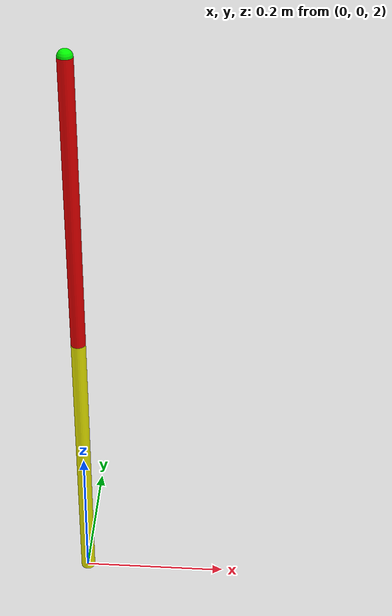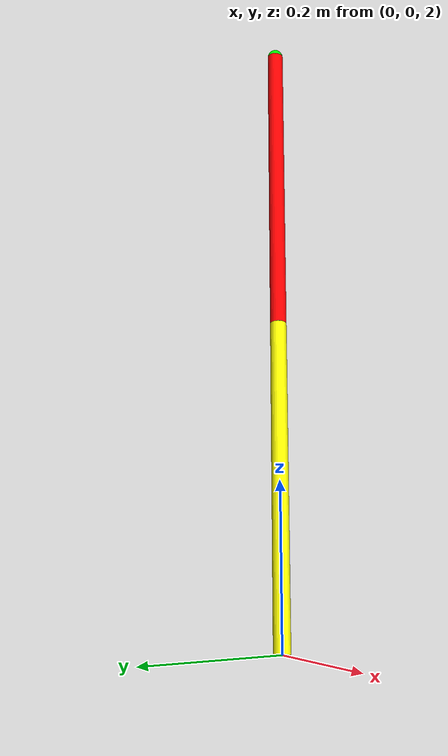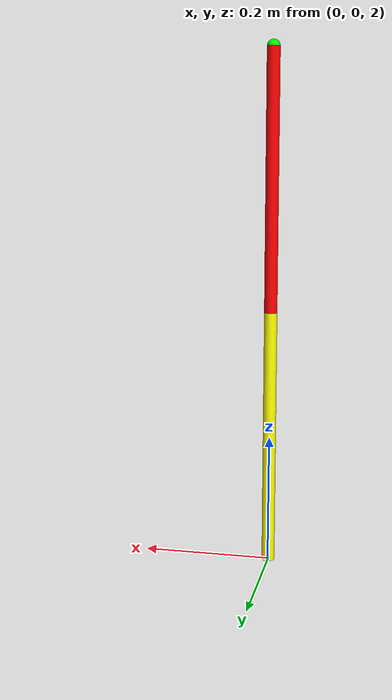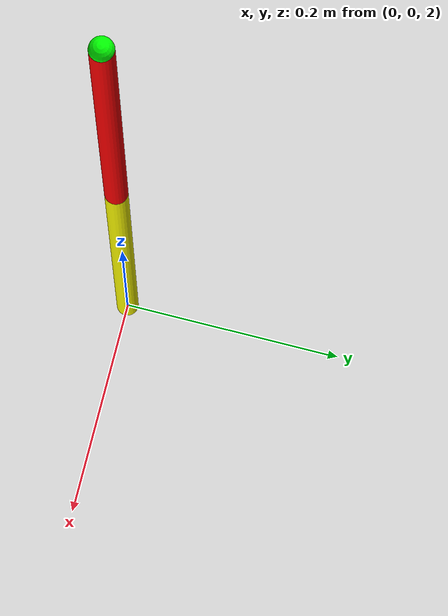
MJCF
<!-- https://mujoco.readthedocs.io/en/latest/overview.html?highlight=hello.xml#examples -->
<mujoco>
  <option gravity = "0 0 -9.81" timestep="0.001">
    <flag contact="enable" />
  </option >
   <worldbody>
      <light diffuse="0 0 0" pos="0 0 10" dir="0 0 -1"/>
      <geom type="plane" size="2.25 2.25 0.01" rgba="1 1 1 1"/>
      <body pos="0 0 2.6" euler="0 0 0">
         <joint name="joint0" type="hinge" axis = "0 1 0" pos = "0 0 0.2"/>
         <geom type="cylinder" size="0.01 0.2" rgba="1 0 0 1" mass="3.0"/>
         <site name="tip" pos="0 0 0.2" size="0.01 0.01 0.01" rgba="0 1 0 1"/>

          <body pos="0 0 -0.4" euler="0 0 0">
            <joint name="joint1" type="hinge" axis = "0 1 0" pos = "0 0 0.2"/>
            <geom type="cylinder" size="0.01 0.2" rgba="1 1 0 1" mass="3.0"/>
            <site name="tip1" pos="0 0 0.2" size="0.01 0.01 0.01" rgba="0 1 1 1"/>
          </body>
      </body>
   </worldbody>

   <actuator>
     <motor name="torque" joint="joint0"  gear="1" ctrllimited="true" ctrlrange="-10000 10000"/>
     <motor name="torque1" joint="joint1"  gear="1" ctrllimited="true" ctrlrange="-10000 10000"/>

   </actuator>
   <sensor>
    <framepos objtype="site" objname="tip"/>
    <torque name="torque_sensor" site="tip"/>
  </sensor>

</mujoco>
